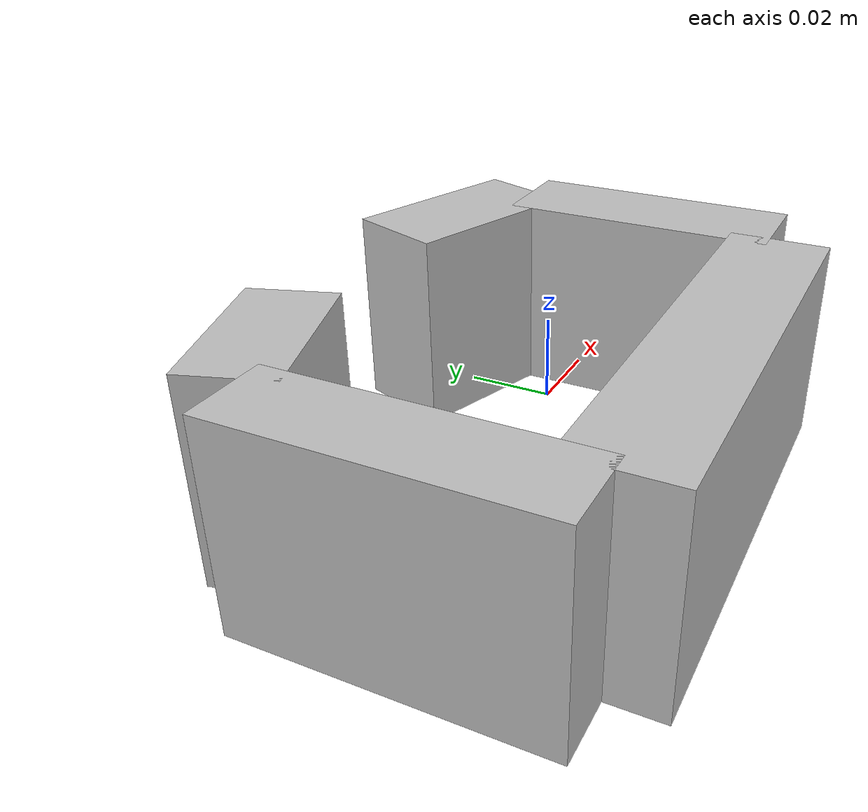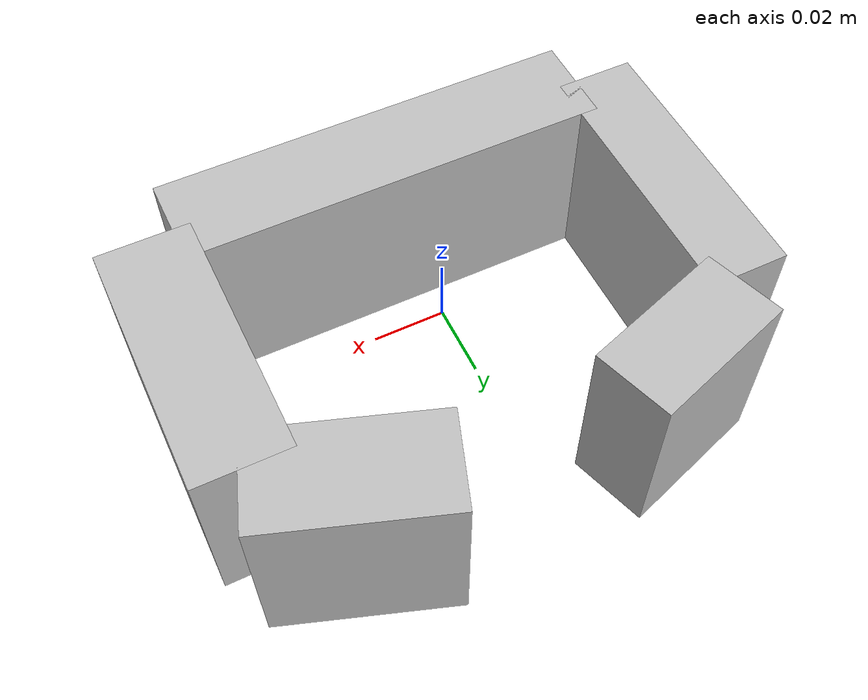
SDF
<?xml version="1.0"?>
<sdf version="1.7">
  <model name="C_shape_texture">
    <link name="C_shape_texture">
      <inertial>
        <pose>0.003130 -0.001535 -0.000720 0 0 0</pose>
        <mass>0.05</mass>
        <inertia>
          <ixx>7.99798916e-05</ixx>
          <iyy>0.000150800818</iyy>
          <izz>0.000206545729</izz>
          <ixy>-4.26588334e-06</ixy>
          <ixz>1.12697712e-07</ixz>
          <iyz>-5.52643218e-08</iyz>
        </inertia>
      </inertial>
      <visual name="box_0">
        <pose>-0.000960 -0.039970 -0.000720 0 0 1.570800</pose>
        <geometry>
          <box><size>0.026000 0.120000 0.053870</size></box>
        </geometry>
        <material>
          <diffuse>0.75 0.75 0.75 1</diffuse>
        </material>
      </visual>
      <collision name="box_0_volume">
        <pose>-0.000960 -0.039970 -0.000720 0 0 1.570800</pose>
        <geometry>
          <box><size>0.026000 0.120000 0.053870</size></box>
        </geometry>
        <drake:proximity_properties>
          <drake:compliant_hydroelastic/>
          <drake:hydroelastic_modulus> 3.0e7 </drake:hydroelastic_modulus>
          <drake:mesh_resolution_hint> 0.02 </drake:mesh_resolution_hint>
          <drake:hunt_crossley_dissipation>10</drake:hunt_crossley_dissipation>
          <drake:mu_dynamic>0.3</drake:mu_dynamic>
        </drake:proximity_properties>
      </collision>
      <visual name="box_1">
        <pose>0.067040 -0.000970 -0.000720 0 0 -1.570800</pose>
        <geometry>
          <box><size>0.073000 0.026000 0.053870</size></box>
        </geometry>
        <material>
          <diffuse>0.75 0.75 0.75 1</diffuse>
        </material>
      </visual>
      <collision name="box_1_volume">
        <pose>0.067040 -0.000970 -0.000720 0 0 -1.570800</pose>
        <geometry>
          <box><size>0.073000 0.026000 0.053870</size></box>
        </geometry>
        <drake:proximity_properties>
          <drake:compliant_hydroelastic/>
          <drake:hydroelastic_modulus> 3.0e7 </drake:hydroelastic_modulus>
          <drake:mesh_resolution_hint> 0.02 </drake:mesh_resolution_hint>
          <drake:hunt_crossley_dissipation>10</drake:hunt_crossley_dissipation>
          <drake:mu_dynamic>0.3</drake:mu_dynamic>
        </drake:proximity_properties>
      </collision>
      <visual name="box_2">
        <pose>-0.066960 0.000030 -0.000720 0 0 -1.570800</pose>
        <geometry>
          <box><size>0.078000 0.022000 0.053870</size></box>
        </geometry>
        <material>
          <diffuse>0.75 0.75 0.75 1</diffuse>
        </material>
      </visual>
      <collision name="box_2_volume">
        <pose>-0.066960 0.000030 -0.000720 0 0 -1.570800</pose>
        <geometry>
          <box><size>0.078000 0.022000 0.053870</size></box>
        </geometry>
        <drake:proximity_properties>
          <drake:compliant_hydroelastic/>
          <drake:hydroelastic_modulus> 3.0e7 </drake:hydroelastic_modulus>
          <drake:mesh_resolution_hint> 0.02 </drake:mesh_resolution_hint>
          <drake:hunt_crossley_dissipation>10</drake:hunt_crossley_dissipation>
          <drake:mu_dynamic>0.3</drake:mu_dynamic>
        </drake:proximity_properties>
      </collision>
      <visual name="box_3">
        <pose>0.045350 0.046610 -0.000720 0 0 -0.337070</pose>
        <geometry>
          <box><size>0.051000 0.027000 0.053870</size></box>
        </geometry>
        <material>
          <diffuse>0.75 0.75 0.75 1</diffuse>
        </material>
      </visual>
      <collision name="box_3_volume">
        <pose>0.045350 0.046610 -0.000720 0 0 -0.337070</pose>
        <geometry>
          <box><size>0.051000 0.027000 0.053870</size></box>
        </geometry>
        <drake:proximity_properties>
          <drake:compliant_hydroelastic/>
          <drake:hydroelastic_modulus> 3.0e7 </drake:hydroelastic_modulus>
          <drake:mesh_resolution_hint> 0.02 </drake:mesh_resolution_hint>
          <drake:hunt_crossley_dissipation>10</drake:hunt_crossley_dissipation>
          <drake:mu_dynamic>0.3</drake:mu_dynamic>
        </drake:proximity_properties>
      </collision>
      <visual name="box_4">
        <pose>-0.043280 0.048340 -0.000720 0 0 -1.251730</pose>
        <geometry>
          <box><size>0.023250 0.043000 0.053870</size></box>
        </geometry>
        <material>
          <diffuse>0.75 0.75 0.75 1</diffuse>
        </material>
      </visual>
      <collision name="box_4_volume">
        <pose>-0.043280 0.048340 -0.000720 0 0 -1.251730</pose>
        <geometry>
          <box><size>0.023250 0.043000 0.053870</size></box>
        </geometry>
        <drake:proximity_properties>
          <drake:compliant_hydroelastic/>
          <drake:hydroelastic_modulus> 3.0e7 </drake:hydroelastic_modulus>
          <drake:mesh_resolution_hint> 0.02 </drake:mesh_resolution_hint>
          <drake:hunt_crossley_dissipation>10</drake:hunt_crossley_dissipation>
          <drake:mu_dynamic>0.3</drake:mu_dynamic>
        </drake:proximity_properties>
      </collision>
    </link>
  </model>
</sdf>
